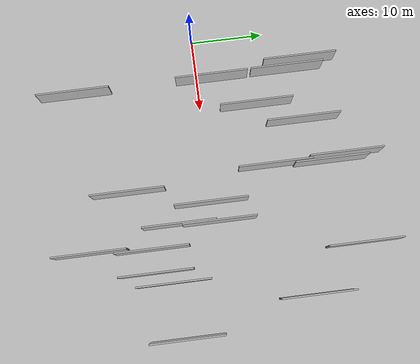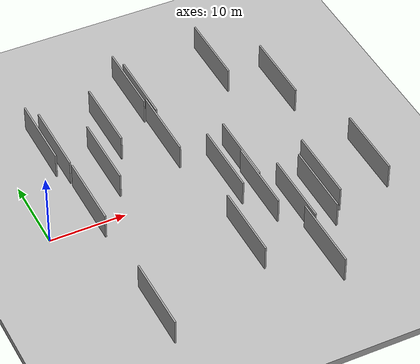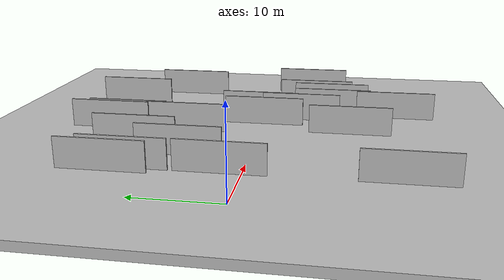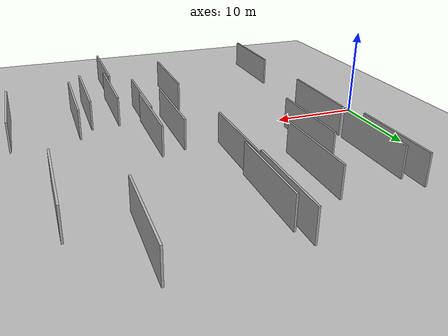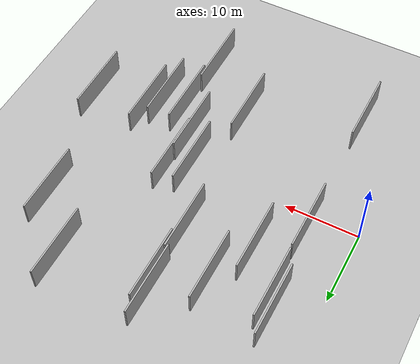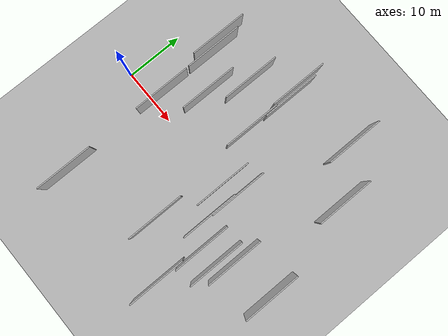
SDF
<?xml version="1.0" encoding="utf-8"?>

<sdf version="1.6">

   <world name="default">

      <gui fullscreen="0">

         <camera name="user_camera">

            <pose>-15 0 4.57585 0 0 0</pose>

            <view_controller>orbit</view_controller>

         </camera>

      </gui>

      <scene>

         <sky>

           <clouds>

             <speed>12</speed>

           </clouds>

         </sky>

         <ambient>0.4 0.4 0.4 1</ambient>

         <background>0.7 0.7 0.7 1</background>

         <shadows>1</shadows>

      </scene>

      <gravity>0 0 -9.8066</gravity>

      <magnetic_field>6e-06 2.3e-05 -4.2e-05</magnetic_field>

      <physics default="0" name="default_physics" type="ode">

         <ode>

            <solver>

               <type>quick</type>

               <iters>10</iters>

               <sor>1.0</sor>

               <use_dynamic_moi_rescaling>0</use_dynamic_moi_rescaling>

            </solver>

            <constraints>

               <cfm>0</cfm>

               <erp>0.2</erp>

               <contact_max_correcting_vel>100</contact_max_correcting_vel>

               <contact_surface_layer>0.001</contact_surface_layer>

            </constraints>

         </ode>

         <max_step_size>0.004</max_step_size>

         <real_time_factor>1</real_time_factor>

         <real_time_update_rate>250</real_time_update_rate>

      </physics>

      <light name="sun" type="directional">

         <cast_shadows>1</cast_shadows>

         <pose>0 0 10 0 0 0</pose>

         <diffuse>0.8 0.8 0.8 1</diffuse>

         <specular>0.2 0.2 0.2 1</specular>

         <attenuation>

            <range>1000</range>

            <constant>0.9</constant>

            <linear>0.01</linear>

            <quadratic>0.001</quadratic>

         </attenuation>

         <direction>-0.5 0.1 -0.9</direction>

      </light>

      <include>

         <name>ground_plane_1</name>

         <uri>model://HANNAS_ground_plane</uri>

         <pose>0 0 0  0 0 0</pose>

      </include>

      <include>

         <name>ground_plane_2</name>

         <uri>model://HANNAS_ground_plane</uri>

         <pose>100 0 0  0 0 0</pose>

      </include>

      <model name="HANNAS_wall_1">

         <static>1</static>

         <pose frame="">5.0170 14.5198 0.0 0.000000 0.000000 1.570796</pose>

         <link name="link">

            <pose frame="">0 0 2.00 0 0 0</pose>

            <collision name="collision">

               <geometry>

                  <box>

                     <size>10.00 0.2 4.00</size>

                  </box>

               </geometry>

               <max_contacts>10</max_contacts>

               <surface>

                  <contact>

                     <ode/>

                  </contact>

                  <bounce/>

                  <friction>

                     <torsional>

                        <ode/>

                     </torsional>

                     <ode/>

                  </friction>

               </surface>

            </collision>

            <visual name="visual">

               <cast_shadows>0</cast_shadows>

               <geometry>

                  <box>

                     <size>10.00 0.2 4.00</size>

                  </box>

               </geometry>

               <material>

                  <script>

                     <uri>model://HANNAS_wall/materials/scripts</uri>

                     <uri>model://HANNAS_wall/materials/textures</uri>

                     <name>vrc/HANNAS_wall</name>

                  </script>

               </material>

            </visual>

            <self_collide>0</self_collide>

            <enable_wind>0</enable_wind>

            <kinematic>0</kinematic>

         </link>

      </model>

      <model name="HANNAS_wall_2">

         <static>1</static>

         <pose frame="">28.4759 -16.8140 0.0 0.000000 0.000000 1.570796</pose>

         <link name="link">

            <pose frame="">0 0 2.00 0 0 0</pose>

            <collision name="collision">

               <geometry>

                  <box>

                     <size>10.00 0.2 4.00</size>

                  </box>

               </geometry>

               <max_contacts>10</max_contacts>

               <surface>

                  <contact>

                     <ode/>

                  </contact>

                  <bounce/>

                  <friction>

                     <torsional>

                        <ode/>

                     </torsional>

                     <ode/>

                  </friction>

               </surface>

            </collision>

            <visual name="visual">

               <cast_shadows>0</cast_shadows>

               <geometry>

                  <box>

                     <size>10.00 0.2 4.00</size>

                  </box>

               </geometry>

               <material>

                  <script>

                     <uri>model://HANNAS_wall/materials/scripts</uri>

                     <uri>model://HANNAS_wall/materials/textures</uri>

                     <name>vrc/HANNAS_wall</name>

                  </script>

               </material>

            </visual>

            <self_collide>0</self_collide>

            <enable_wind>0</enable_wind>

            <kinematic>0</kinematic>

         </link>

      </model>

      <model name="HANNAS_wall_3">

         <static>1</static>

         <pose frame="">13.6258 13.8792 0.0 0.000000 0.000000 1.570796</pose>

         <link name="link">

            <pose frame="">0 0 2.00 0 0 0</pose>

            <collision name="collision">

               <geometry>

                  <box>

                     <size>10.00 0.2 4.00</size>

                  </box>

               </geometry>

               <max_contacts>10</max_contacts>

               <surface>

                  <contact>

                     <ode/>

                  </contact>

                  <bounce/>

                  <friction>

                     <torsional>

                        <ode/>

                     </torsional>

                     <ode/>

                  </friction>

               </surface>

            </collision>

            <visual name="visual">

               <cast_shadows>0</cast_shadows>

               <geometry>

                  <box>

                     <size>10.00 0.2 4.00</size>

                  </box>

               </geometry>

               <material>

                  <script>

                     <uri>model://HANNAS_wall/materials/scripts</uri>

                     <uri>model://HANNAS_wall/materials/textures</uri>

                     <name>vrc/HANNAS_wall</name>

                  </script>

               </material>

            </visual>

            <self_collide>0</self_collide>

            <enable_wind>0</enable_wind>

            <kinematic>0</kinematic>

         </link>

      </model>

      <model name="HANNAS_wall_4">

         <static>1</static>

         <pose frame="">6.1085 12.5830 0.0 0.000000 0.000000 1.570796</pose>

         <link name="link">

            <pose frame="">0 0 2.00 0 0 0</pose>

            <collision name="collision">

               <geometry>

                  <box>

                     <size>10.00 0.2 4.00</size>

                  </box>

               </geometry>

               <max_contacts>10</max_contacts>

               <surface>

                  <contact>

                     <ode/>

                  </contact>

                  <bounce/>

                  <friction>

                     <torsional>

                        <ode/>

                     </torsional>

                     <ode/>

                  </friction>

               </surface>

            </collision>

            <visual name="visual">

               <cast_shadows>0</cast_shadows>

               <geometry>

                  <box>

                     <size>10.00 0.2 4.00</size>

                  </box>

               </geometry>

               <material>

                  <script>

                     <uri>model://HANNAS_wall/materials/scripts</uri>

                     <uri>model://HANNAS_wall/materials/textures</uri>

                     <name>vrc/HANNAS_wall</name>

                  </script>

               </material>

            </visual>

            <self_collide>0</self_collide>

            <enable_wind>0</enable_wind>

            <kinematic>0</kinematic>

         </link>

      </model>

      <model name="HANNAS_wall_5">

         <static>1</static>

         <pose frame="">41.0255 -5.1902 0.0 0.000000 0.000000 1.570796</pose>

         <link name="link">

            <pose frame="">0 0 2.00 0 0 0</pose>

            <collision name="collision">

               <geometry>

                  <box>

                     <size>10.00 0.2 4.00</size>

                  </box>

               </geometry>

               <max_contacts>10</max_contacts>

               <surface>

                  <contact>

                     <ode/>

                  </contact>

                  <bounce/>

                  <friction>

                     <torsional>

                        <ode/>

                     </torsional>

                     <ode/>

                  </friction>

               </surface>

            </collision>

            <visual name="visual">

               <cast_shadows>0</cast_shadows>

               <geometry>

                  <box>

                     <size>10.00 0.2 4.00</size>

                  </box>

               </geometry>

               <material>

                  <script>

                     <uri>model://HANNAS_wall/materials/scripts</uri>

                     <uri>model://HANNAS_wall/materials/textures</uri>

                     <name>vrc/HANNAS_wall</name>

                  </script>

               </material>

            </visual>

            <self_collide>0</self_collide>

            <enable_wind>0</enable_wind>

            <kinematic>0</kinematic>

         </link>

      </model>

      <model name="HANNAS_wall_6">

         <static>1</static>

         <pose frame="">37.4148 12.4270 0.0 0.000000 0.000000 1.570796</pose>

         <link name="link">

            <pose frame="">0 0 2.00 0 0 0</pose>

            <collision name="collision">

               <geometry>

                  <box>

                     <size>10.00 0.2 4.00</size>

                  </box>

               </geometry>

               <max_contacts>10</max_contacts>

               <surface>

                  <contact>

                     <ode/>

                  </contact>

                  <bounce/>

                  <friction>

                     <torsional>

                        <ode/>

                     </torsional>

                     <ode/>

                  </friction>

               </surface>

            </collision>

            <visual name="visual">

               <cast_shadows>0</cast_shadows>

               <geometry>

                  <box>

                     <size>10.00 0.2 4.00</size>

                  </box>

               </geometry>

               <material>

                  <script>

                     <uri>model://HANNAS_wall/materials/scripts</uri>

                     <uri>model://HANNAS_wall/materials/textures</uri>

                     <name>vrc/HANNAS_wall</name>

                  </script>

               </material>

            </visual>

            <self_collide>0</self_collide>

            <enable_wind>0</enable_wind>

            <kinematic>0</kinematic>

         </link>

      </model>

      <model name="HANNAS_wall_7">

         <static>1</static>

         <pose frame="">10.6777 7.7717 0.0 0.000000 0.000000 1.570796</pose>

         <link name="link">

            <pose frame="">0 0 2.00 0 0 0</pose>

            <collision name="collision">

               <geometry>

                  <box>

                     <size>10.00 0.2 4.00</size>

                  </box>

               </geometry>

               <max_contacts>10</max_contacts>

               <surface>

                  <contact>

                     <ode/>

                  </contact>

                  <bounce/>

                  <friction>

                     <torsional>

                        <ode/>

                     </torsional>

                     <ode/>

                  </friction>

               </surface>

            </collision>

            <visual name="visual">

               <cast_shadows>0</cast_shadows>

               <geometry>

                  <box>

                     <size>10.00 0.2 4.00</size>

                  </box>

               </geometry>

               <material>

                  <script>

                     <uri>model://HANNAS_wall/materials/scripts</uri>

                     <uri>model://HANNAS_wall/materials/textures</uri>

                     <name>vrc/HANNAS_wall</name>

                  </script>

               </material>

            </visual>

            <self_collide>0</self_collide>

            <enable_wind>0</enable_wind>

            <kinematic>0</kinematic>

         </link>

      </model>

      <model name="HANNAS_wall_8">

         <static>1</static>

         <pose frame="">31.4220 19.6025 0.0 0.000000 0.000000 1.570796</pose>

         <link name="link">

            <pose frame="">0 0 2.00 0 0 0</pose>

            <collision name="collision">

               <geometry>

                  <box>

                     <size>10.00 0.2 4.00</size>

                  </box>

               </geometry>

               <max_contacts>10</max_contacts>

               <surface>

                  <contact>

                     <ode/>

                  </contact>

                  <bounce/>

                  <friction>

                     <torsional>

                        <ode/>

                     </torsional>

                     <ode/>

                  </friction>

               </surface>

            </collision>

            <visual name="visual">

               <cast_shadows>0</cast_shadows>

               <geometry>

                  <box>

                     <size>10.00 0.2 4.00</size>

                  </box>

               </geometry>

               <material>

                  <script>

                     <uri>model://HANNAS_wall/materials/scripts</uri>

                     <uri>model://HANNAS_wall/materials/textures</uri>

                     <name>vrc/HANNAS_wall</name>

                  </script>

               </material>

            </visual>

            <self_collide>0</self_collide>

            <enable_wind>0</enable_wind>

            <kinematic>0</kinematic>

         </link>

      </model>

      <model name="HANNAS_wall_9">

         <static>1</static>

         <pose frame="">19.4911 9.2202 0.0 0.000000 0.000000 1.570796</pose>

         <link name="link">

            <pose frame="">0 0 2.00 0 0 0</pose>

            <collision name="collision">

               <geometry>

                  <box>

                     <size>10.00 0.2 4.00</size>

                  </box>

               </geometry>

               <max_contacts>10</max_contacts>

               <surface>

                  <contact>

                     <ode/>

                  </contact>

                  <bounce/>

                  <friction>

                     <torsional>

                        <ode/>

                     </torsional>

                     <ode/>

                  </friction>

               </surface>

            </collision>

            <visual name="visual">

               <cast_shadows>0</cast_shadows>

               <geometry>

                  <box>

                     <size>10.00 0.2 4.00</size>

                  </box>

               </geometry>

               <material>

                  <script>

                     <uri>model://HANNAS_wall/materials/scripts</uri>

                     <uri>model://HANNAS_wall/materials/textures</uri>

                     <name>vrc/HANNAS_wall</name>

                  </script>

               </material>

            </visual>

            <self_collide>0</self_collide>

            <enable_wind>0</enable_wind>

            <kinematic>0</kinematic>

         </link>

      </model>

      <model name="HANNAS_wall_10">

         <static>1</static>

         <pose frame="">6.2766 -17.0150 0.0 0.000000 0.000000 1.570796</pose>

         <link name="link">

            <pose frame="">0 0 2.00 0 0 0</pose>

            <collision name="collision">

               <geometry>

                  <box>

                     <size>10.00 0.2 4.00</size>

                  </box>

               </geometry>

               <max_contacts>10</max_contacts>

               <surface>

                  <contact>

                     <ode/>

                  </contact>

                  <bounce/>

                  <friction>

                     <torsional>

                        <ode/>

                     </torsional>

                     <ode/>

                  </friction>

               </surface>

            </collision>

            <visual name="visual">

               <cast_shadows>0</cast_shadows>

               <geometry>

                  <box>

                     <size>10.00 0.2 4.00</size>

                  </box>

               </geometry>

               <material>

                  <script>

                     <uri>model://HANNAS_wall/materials/scripts</uri>

                     <uri>model://HANNAS_wall/materials/textures</uri>

                     <name>vrc/HANNAS_wall</name>

                  </script>

               </material>

            </visual>

            <self_collide>0</self_collide>

            <enable_wind>0</enable_wind>

            <kinematic>0</kinematic>

         </link>

      </model>

      <model name="HANNAS_wall_11">

         <static>1</static>

         <pose frame="">26.0001 -4.6062 0.0 0.000000 0.000000 1.570796</pose>

         <link name="link">

            <pose frame="">0 0 2.00 0 0 0</pose>

            <collision name="collision">

               <geometry>

                  <box>

                     <size>10.00 0.2 4.00</size>

                  </box>

               </geometry>

               <max_contacts>10</max_contacts>

               <surface>

                  <contact>

                     <ode/>

                  </contact>

                  <bounce/>

                  <friction>

                     <torsional>

                        <ode/>

                     </torsional>

                     <ode/>

                  </friction>

               </surface>

            </collision>

            <visual name="visual">

               <cast_shadows>0</cast_shadows>

               <geometry>

                  <box>

                     <size>10.00 0.2 4.00</size>

                  </box>

               </geometry>

               <material>

                  <script>

                     <uri>model://HANNAS_wall/materials/scripts</uri>

                     <uri>model://HANNAS_wall/materials/textures</uri>

                     <name>vrc/HANNAS_wall</name>

                  </script>

               </material>

            </visual>

            <self_collide>0</self_collide>

            <enable_wind>0</enable_wind>

            <kinematic>0</kinematic>

         </link>

      </model>

      <model name="HANNAS_wall_12">

         <static>1</static>

         <pose frame="">19.1347 18.9168 0.0 0.000000 0.000000 1.570796</pose>

         <link name="link">

            <pose frame="">0 0 2.00 0 0 0</pose>

            <collision name="collision">

               <geometry>

                  <box>

                     <size>10.00 0.2 4.00</size>

                  </box>

               </geometry>

               <max_contacts>10</max_contacts>

               <surface>

                  <contact>

                     <ode/>

                  </contact>

                  <bounce/>

                  <friction>

                     <torsional>

                        <ode/>

                     </torsional>

                     <ode/>

                  </friction>

               </surface>

            </collision>

            <visual name="visual">

               <cast_shadows>0</cast_shadows>

               <geometry>

                  <box>

                     <size>10.00 0.2 4.00</size>

                  </box>

               </geometry>

               <material>

                  <script>

                     <uri>model://HANNAS_wall/materials/scripts</uri>

                     <uri>model://HANNAS_wall/materials/textures</uri>

                     <name>vrc/HANNAS_wall</name>

                  </script>

               </material>

            </visual>

            <self_collide>0</self_collide>

            <enable_wind>0</enable_wind>

            <kinematic>0</kinematic>

         </link>

      </model>

      <model name="HANNAS_wall_13">

         <static>1</static>

         <pose frame="">33.6622 -6.1644 0.0 0.000000 0.000000 1.570796</pose>

         <link name="link">

            <pose frame="">0 0 2.00 0 0 0</pose>

            <collision name="collision">

               <geometry>

                  <box>

                     <size>10.00 0.2 4.00</size>

                  </box>

               </geometry>

               <max_contacts>10</max_contacts>

               <surface>

                  <contact>

                     <ode/>

                  </contact>

                  <bounce/>

                  <friction>

                     <torsional>

                        <ode/>

                     </torsional>

                     <ode/>

                  </friction>

               </surface>

            </collision>

            <visual name="visual">

               <cast_shadows>0</cast_shadows>

               <geometry>

                  <box>

                     <size>10.00 0.2 4.00</size>

                  </box>

               </geometry>

               <material>

                  <script>

                     <uri>model://HANNAS_wall/materials/scripts</uri>

                     <uri>model://HANNAS_wall/materials/textures</uri>

                     <name>vrc/HANNAS_wall</name>

                  </script>

               </material>

            </visual>

            <self_collide>0</self_collide>

            <enable_wind>0</enable_wind>

            <kinematic>0</kinematic>

         </link>

      </model>

      <model name="HANNAS_wall_14">

         <static>1</static>

         <pose frame="">6.1568 2.1117 0.0 0.000000 0.000000 1.570796</pose>

         <link name="link">

            <pose frame="">0 0 2.00 0 0 0</pose>

            <collision name="collision">

               <geometry>

                  <box>

                     <size>10.00 0.2 4.00</size>

                  </box>

               </geometry>

               <max_contacts>10</max_contacts>

               <surface>

                  <contact>

                     <ode/>

                  </contact>

                  <bounce/>

                  <friction>

                     <torsional>

                        <ode/>

                     </torsional>

                     <ode/>

                  </friction>

               </surface>

            </collision>

            <visual name="visual">

               <cast_shadows>0</cast_shadows>

               <geometry>

                  <box>

                     <size>10.00 0.2 4.00</size>

                  </box>

               </geometry>

               <material>

                  <script>

                     <uri>model://HANNAS_wall/materials/scripts</uri>

                     <uri>model://HANNAS_wall/materials/textures</uri>

                     <name>vrc/HANNAS_wall</name>

                  </script>

               </material>

            </visual>

            <self_collide>0</self_collide>

            <enable_wind>0</enable_wind>

            <kinematic>0</kinematic>

         </link>

      </model>

      <model name="HANNAS_wall_15">

         <static>1</static>

         <pose frame="">20.9176 -11.0210 0.0 0.000000 0.000000 1.570796</pose>

         <link name="link">

            <pose frame="">0 0 2.00 0 0 0</pose>

            <collision name="collision">

               <geometry>

                  <box>

                     <size>10.00 0.2 4.00</size>

                  </box>

               </geometry>

               <max_contacts>10</max_contacts>

               <surface>

                  <contact>

                     <ode/>

                  </contact>

                  <bounce/>

                  <friction>

                     <torsional>

                        <ode/>

                     </torsional>

                     <ode/>

                  </friction>

               </surface>

            </collision>

            <visual name="visual">

               <cast_shadows>0</cast_shadows>

               <geometry>

                  <box>

                     <size>10.00 0.2 4.00</size>

                  </box>

               </geometry>

               <material>

                  <script>

                     <uri>model://HANNAS_wall/materials/scripts</uri>

                     <uri>model://HANNAS_wall/materials/textures</uri>

                     <name>vrc/HANNAS_wall</name>

                  </script>

               </material>

            </visual>

            <self_collide>0</self_collide>

            <enable_wind>0</enable_wind>

            <kinematic>0</kinematic>

         </link>

      </model>

      <model name="HANNAS_wall_16">

         <static>1</static>

         <pose frame="">23.5638 -0.0278 0.0 0.000000 0.000000 1.570796</pose>

         <link name="link">

            <pose frame="">0 0 2.00 0 0 0</pose>

            <collision name="collision">

               <geometry>

                  <box>

                     <size>10.00 0.2 4.00</size>

                  </box>

               </geometry>

               <max_contacts>10</max_contacts>

               <surface>

                  <contact>

                     <ode/>

                  </contact>

                  <bounce/>

                  <friction>

                     <torsional>

                        <ode/>

                     </torsional>

                     <ode/>

                  </friction>

               </surface>

            </collision>

            <visual name="visual">

               <cast_shadows>0</cast_shadows>

               <geometry>

                  <box>

                     <size>10.00 0.2 4.00</size>

                  </box>

               </geometry>

               <material>

                  <script>

                     <uri>model://HANNAS_wall/materials/scripts</uri>

                     <uri>model://HANNAS_wall/materials/textures</uri>

                     <name>vrc/HANNAS_wall</name>

                  </script>

               </material>

            </visual>

            <self_collide>0</self_collide>

            <enable_wind>0</enable_wind>

            <kinematic>0</kinematic>

         </link>

      </model>

      <model name="HANNAS_wall_17">

         <static>1</static>

         <pose frame="">28.9253 -8.5679 0.0 0.000000 0.000000 1.570796</pose>

         <link name="link">

            <pose frame="">0 0 2.00 0 0 0</pose>

            <collision name="collision">

               <geometry>

                  <box>

                     <size>10.00 0.2 4.00</size>

                  </box>

               </geometry>

               <max_contacts>10</max_contacts>

               <surface>

                  <contact>

                     <ode/>

                  </contact>

                  <bounce/>

                  <friction>

                     <torsional>

                        <ode/>

                     </torsional>

                     <ode/>

                  </friction>

               </surface>

            </collision>

            <visual name="visual">

               <cast_shadows>0</cast_shadows>

               <geometry>

                  <box>

                     <size>10.00 0.2 4.00</size>

                  </box>

               </geometry>

               <material>

                  <script>

                     <uri>model://HANNAS_wall/materials/scripts</uri>

                     <uri>model://HANNAS_wall/materials/textures</uri>

                     <name>vrc/HANNAS_wall</name>

                  </script>

               </material>

            </visual>

            <self_collide>0</self_collide>

            <enable_wind>0</enable_wind>

            <kinematic>0</kinematic>

         </link>

      </model>

      <model name="HANNAS_wall_18">

         <static>1</static>

         <pose frame="">26.2015 0.7805 0.0 0.000000 0.000000 1.570796</pose>

         <link name="link">

            <pose frame="">0 0 2.00 0 0 0</pose>

            <collision name="collision">

               <geometry>

                  <box>

                     <size>10.00 0.2 4.00</size>

                  </box>

               </geometry>

               <max_contacts>10</max_contacts>

               <surface>

                  <contact>

                     <ode/>

                  </contact>

                  <bounce/>

                  <friction>

                     <torsional>

                        <ode/>

                     </torsional>

                     <ode/>

                  </friction>

               </surface>

            </collision>

            <visual name="visual">

               <cast_shadows>0</cast_shadows>

               <geometry>

                  <box>

                     <size>10.00 0.2 4.00</size>

                  </box>

               </geometry>

               <material>

                  <script>

                     <uri>model://HANNAS_wall/materials/scripts</uri>

                     <uri>model://HANNAS_wall/materials/textures</uri>

                     <name>vrc/HANNAS_wall</name>

                  </script>

               </material>

            </visual>

            <self_collide>0</self_collide>

            <enable_wind>0</enable_wind>

            <kinematic>0</kinematic>

         </link>

      </model>

      <model name="HANNAS_wall_19">

         <static>1</static>

         <pose frame="">19.8059 16.8224 0.0 0.000000 0.000000 1.570796</pose>

         <link name="link">

            <pose frame="">0 0 2.00 0 0 0</pose>

            <collision name="collision">

               <geometry>

                  <box>

                     <size>10.00 0.2 4.00</size>

                  </box>

               </geometry>

               <max_contacts>10</max_contacts>

               <surface>

                  <contact>

                     <ode/>

                  </contact>

                  <bounce/>

                  <friction>

                     <torsional>

                        <ode/>

                     </torsional>

                     <ode/>

                  </friction>

               </surface>

            </collision>

            <visual name="visual">

               <cast_shadows>0</cast_shadows>

               <geometry>

                  <box>

                     <size>10.00 0.2 4.00</size>

                  </box>

               </geometry>

               <material>

                  <script>

                     <uri>model://HANNAS_wall/materials/scripts</uri>

                     <uri>model://HANNAS_wall/materials/textures</uri>

                     <name>vrc/HANNAS_wall</name>

                  </script>

               </material>

            </visual>

            <self_collide>0</self_collide>

            <enable_wind>0</enable_wind>

            <kinematic>0</kinematic>

         </link>

      </model>

      <model name="HANNAS_wall_20">

         <static>1</static>

         <pose frame="">32.0848 -8.3414 0.0 0.000000 0.000000 1.570796</pose>

         <link name="link">

            <pose frame="">0 0 2.00 0 0 0</pose>

            <collision name="collision">

               <geometry>

                  <box>

                     <size>10.00 0.2 4.00</size>

                  </box>

               </geometry>

               <max_contacts>10</max_contacts>

               <surface>

                  <contact>

                     <ode/>

                  </contact>

                  <bounce/>

                  <friction>

                     <torsional>

                        <ode/>

                     </torsional>

                     <ode/>

                  </friction>

               </surface>

            </collision>

            <visual name="visual">

               <cast_shadows>0</cast_shadows>

               <geometry>

                  <box>

                     <size>10.00 0.2 4.00</size>

                  </box>

               </geometry>

               <material>

                  <script>

                     <uri>model://HANNAS_wall/materials/scripts</uri>

                     <uri>model://HANNAS_wall/materials/textures</uri>

                     <name>vrc/HANNAS_wall</name>

                  </script>

               </material>

            </visual>

            <self_collide>0</self_collide>

            <enable_wind>0</enable_wind>

            <kinematic>0</kinematic>

         </link>

      </model>

   </world>

</sdf>

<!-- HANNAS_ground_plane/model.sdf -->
<sdf version="1.4">
<model name="HANNAS_ground_plane">
  <static>true</static>
    <link name="link">
      <collision name="collision">
        <geometry>
          <plane>
            <normal>0 0 1</normal>
            <size>1000 1000</size>
          </plane>
        </geometry>
        <surface>
          <friction>
            <ode>
              <mu>100</mu>
              <mu2>50</mu2>
            </ode>
          </friction>
        </surface>
      </collision>
      <visual name="visual">
        <cast_shadows>false</cast_shadows>
        <geometry>
          <plane>
            <normal>0 0 1</normal>
            <size>1000 1000</size>
          </plane>
        </geometry>
        <material>
          <script>
            <uri>model://HANNAS_ground_plane/materials/scripts/HANNAS_ground_plane.material</uri>
	    <uri>model://HANNAS_ground_plane/materials/textures</uri>
            <name>HANNASGroundPlane/Image</name>
          </script>
        </material>
      </visual>
    </link>
  </model>
</sdf>
